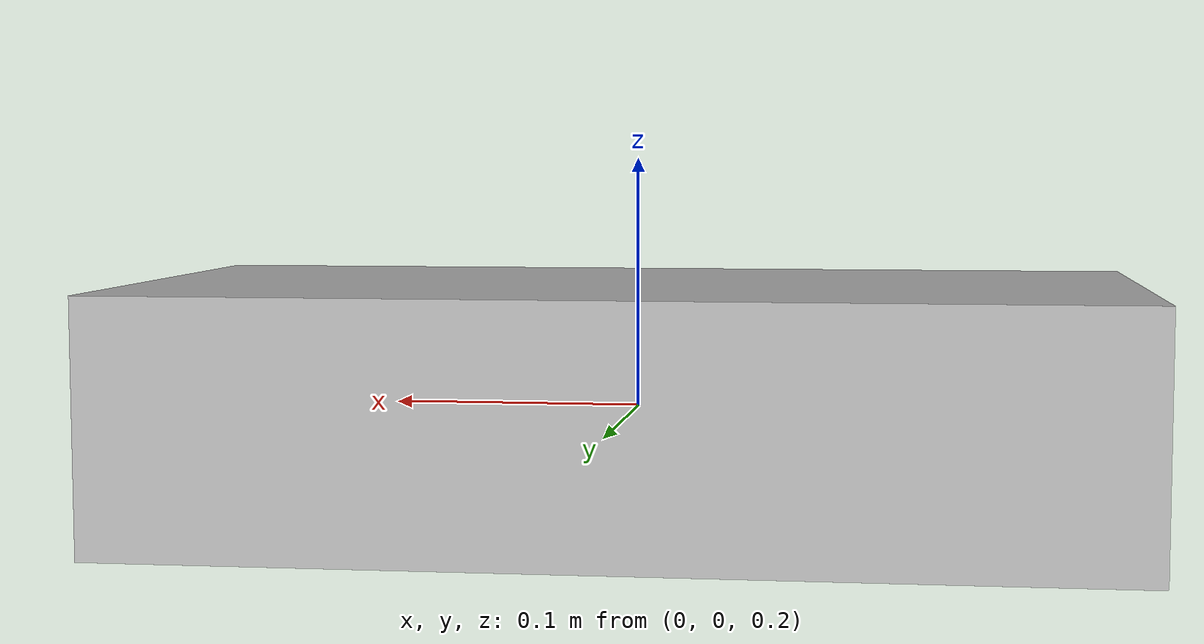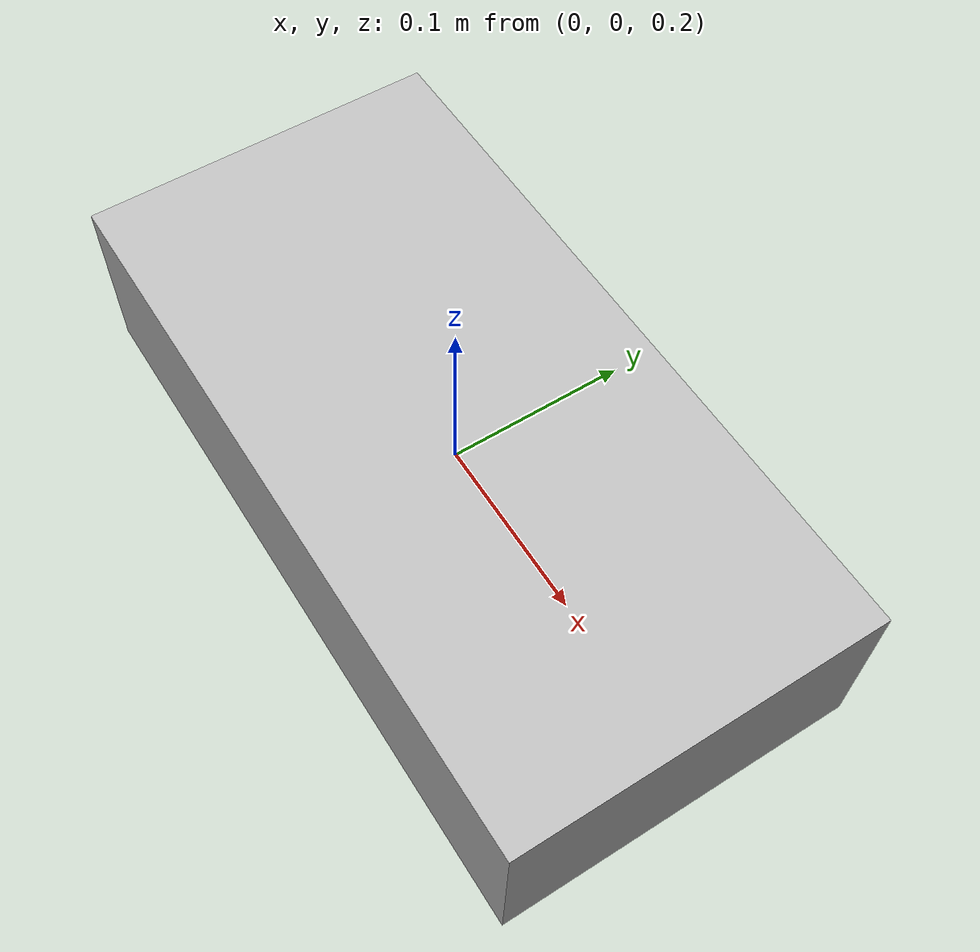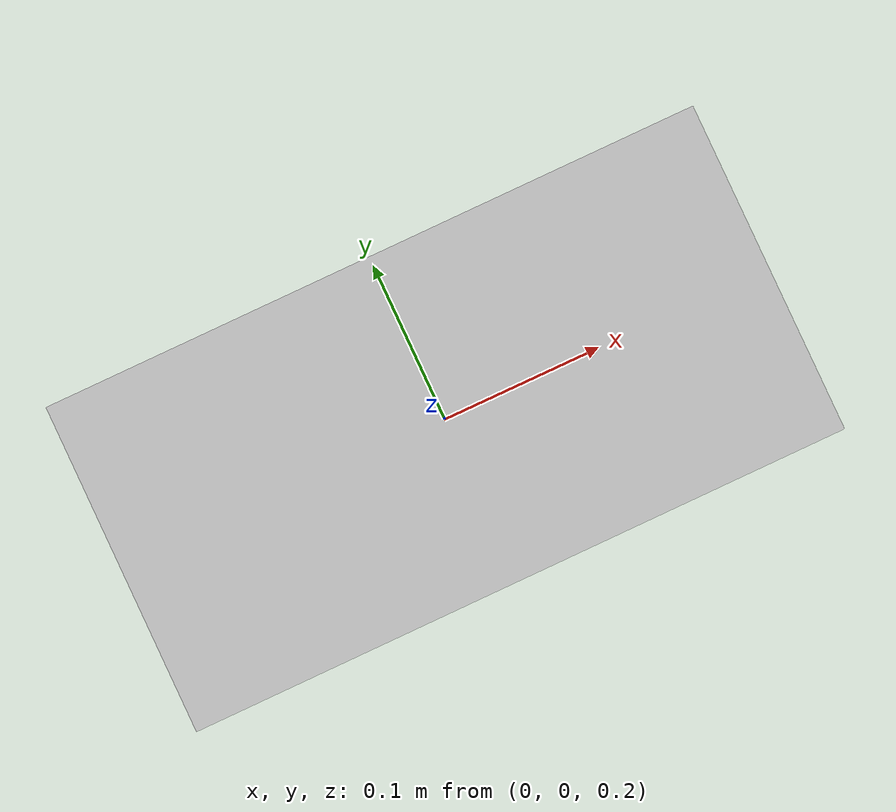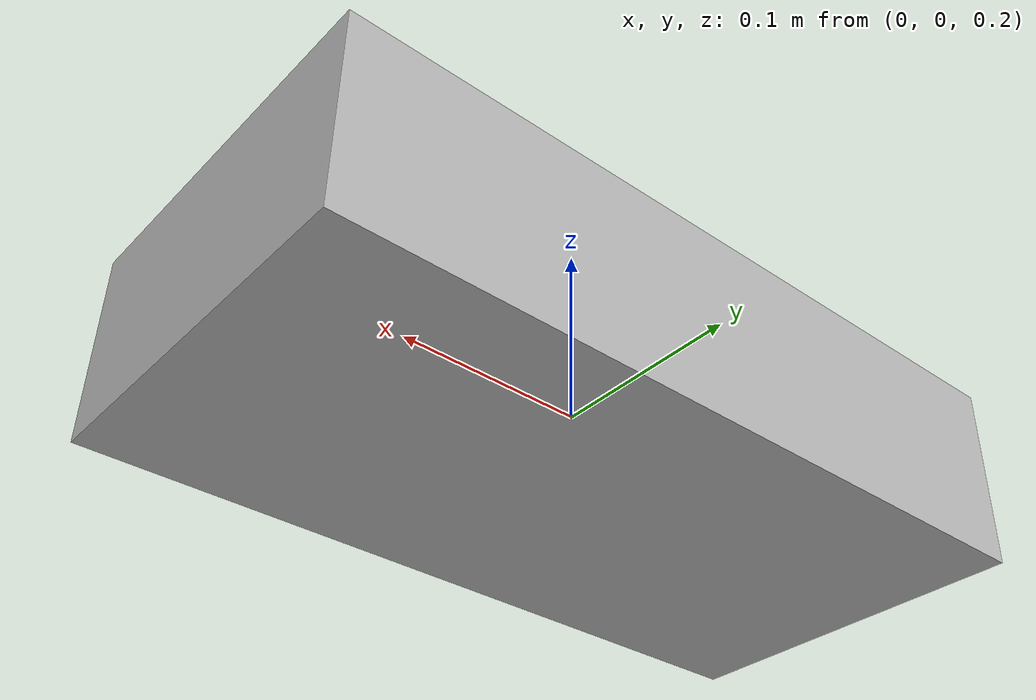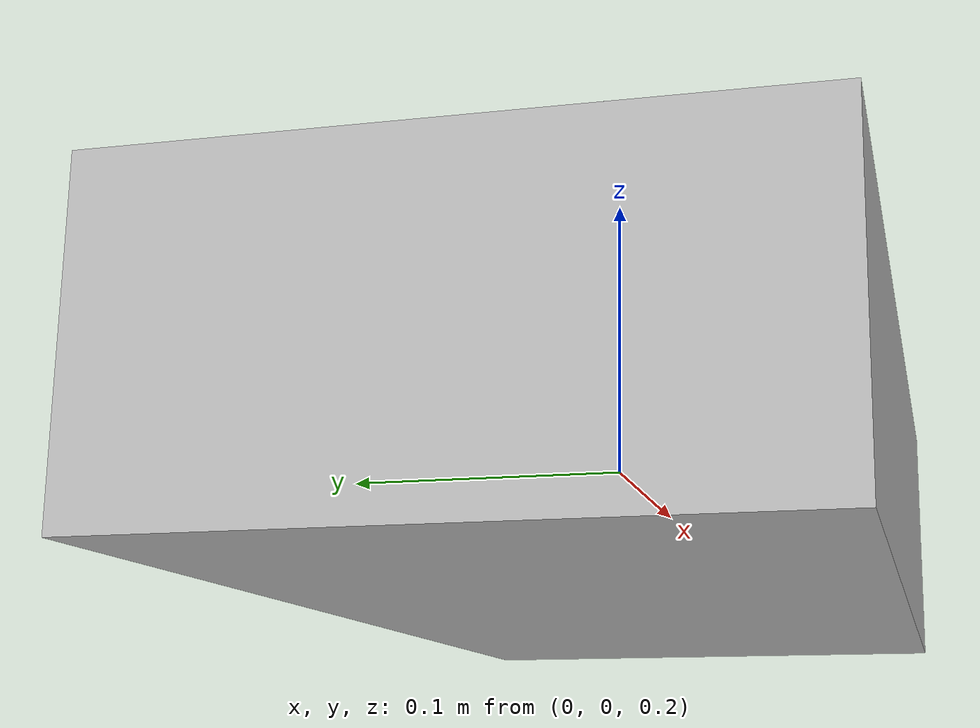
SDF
<?xml version='1.0' encoding='UTF-8'?>
<sdf version='1.9'>
  <model name='quadruped'>
    <link name='base_link'>
      <pose>0 0 0.2 0 0 0</pose>
      <inertial>
        <mass>1.0</mass>
        <inertia>
          <ixx>0.01</ixx>
          <iyy>0.01</iyy>
          <izz>0.01</izz>
        </inertia>
      </inertial>
      <collision name='collision'>
        <geometry>
          <box><size>0.4 0.2 0.1</size></box>
        </geometry>
      </collision>
      <visual name='visual'>
        <geometry>
          <box><size>0.4 0.2 0.1</size></box>
        </geometry>
      </visual>
      <!-- basic sensors for SITL -->
      <sensor name='imu_sensor' type='imu'>
        <always_on>1</always_on>
        <update_rate>250</update_rate>
        <imu>
          <angular_velocity>
            <x>
              <noise type='gaussian'>
                <mean>0</mean>
                <stddev>0.0003394</stddev>
                <dynamic_bias_stddev>3.8785e-05</dynamic_bias_stddev>
                <dynamic_bias_correlation_time>1000</dynamic_bias_correlation_time>
              </noise>
            </x>
            <y>
              <noise type='gaussian'>
                <mean>0</mean>
                <stddev>0.0003394</stddev>
                <dynamic_bias_stddev>3.8785e-05</dynamic_bias_stddev>
                <dynamic_bias_correlation_time>1000</dynamic_bias_correlation_time>
              </noise>
            </y>
            <z>
              <noise type='gaussian'>
                <mean>0</mean>
                <stddev>0.0003394</stddev>
                <dynamic_bias_stddev>3.8785e-05</dynamic_bias_stddev>
                <dynamic_bias_correlation_time>1000</dynamic_bias_correlation_time>
              </noise>
            </z>
          </angular_velocity>
          <linear_acceleration>
            <x>
              <noise type='gaussian'>
                <mean>0</mean>
                <stddev>0.004</stddev>
                <dynamic_bias_stddev>0.006</dynamic_bias_stddev>
                <dynamic_bias_correlation_time>300</dynamic_bias_correlation_time>
              </noise>
            </x>
            <y>
              <noise type='gaussian'>
                <mean>0</mean>
                <stddev>0.004</stddev>
                <dynamic_bias_stddev>0.006</dynamic_bias_stddev>
                <dynamic_bias_correlation_time>300</dynamic_bias_correlation_time>
              </noise>
            </y>
            <z>
              <noise type='gaussian'>
                <mean>0</mean>
                <stddev>0.004</stddev>
                <dynamic_bias_stddev>0.006</dynamic_bias_stddev>
                <dynamic_bias_correlation_time>300</dynamic_bias_correlation_time>
              </noise>
            </z>
          </linear_acceleration>
        </imu>
      </sensor>
      <sensor name='air_pressure_sensor' type='air_pressure'>
        <always_on>1</always_on>
        <update_rate>50</update_rate>
        <air_pressure>
          <pressure>
            <noise type='gaussian'>
              <mean>0</mean>
              <stddev>0.01</stddev>
            </noise>
          </pressure>
        </air_pressure>
      </sensor>
      <sensor name='magnetometer_sensor' type='magnetometer'>
        <always_on>1</always_on>
        <update_rate>100</update_rate>
        <magnetometer>
          <x>
            <noise type='gaussian'>
              <stddev>0.0001</stddev>
            </noise>
          </x>
          <y>
            <noise type='gaussian'>
              <stddev>0.0001</stddev>
            </noise>
          </y>
          <z>
            <noise type='gaussian'>
              <stddev>0.0001</stddev>
            </noise>
          </z>
        </magnetometer>
      </sensor>
      <sensor name='navsat_sensor' type='navsat'>
        <always_on>1</always_on>
        <update_rate>30</update_rate>
      </sensor>

    </link>
    <!-- simple legs for visual reference -->
    <link name='leg_fl'>
      <pose>0.15 0.1 0 0 0 0</pose>
    </link>
    <link name='leg_fr'>
      <pose>0.15 -0.1 0 0 0 0</pose>
    </link>
    <link name='leg_rl'>
      <pose>-0.15 0.1 0 0 0 0</pose>
    </link>
    <link name='leg_rr'>
      <pose>-0.15 -0.1 0 0 0 0</pose>
    </link>
  </model>
</sdf>
